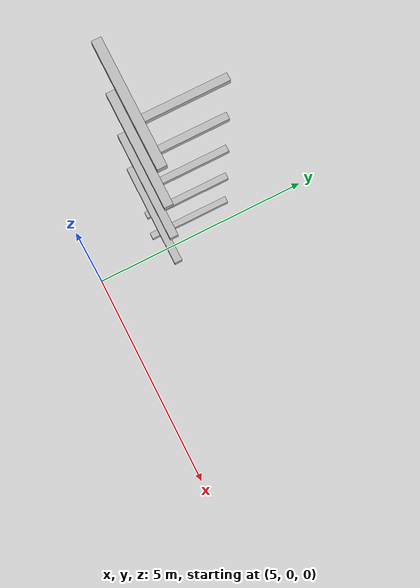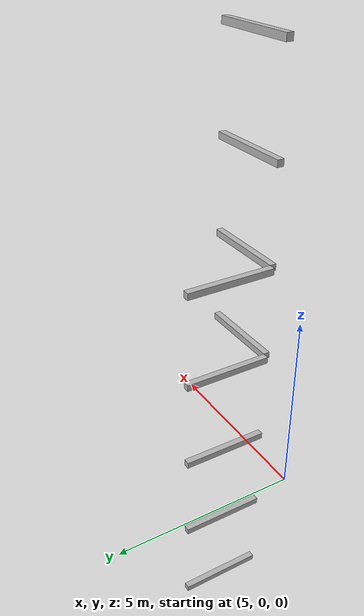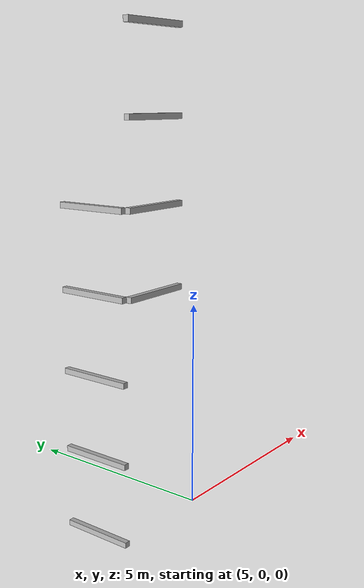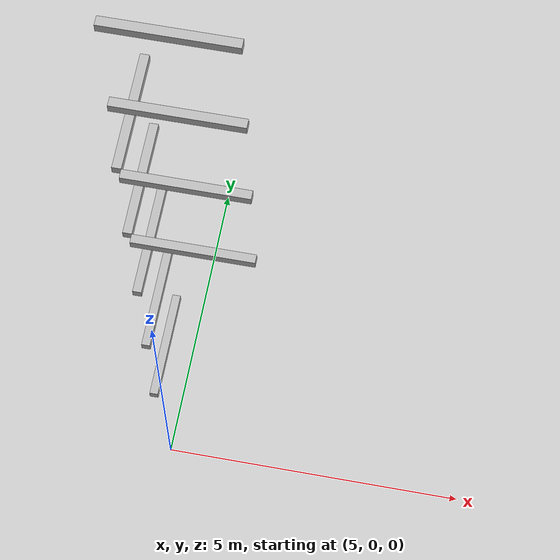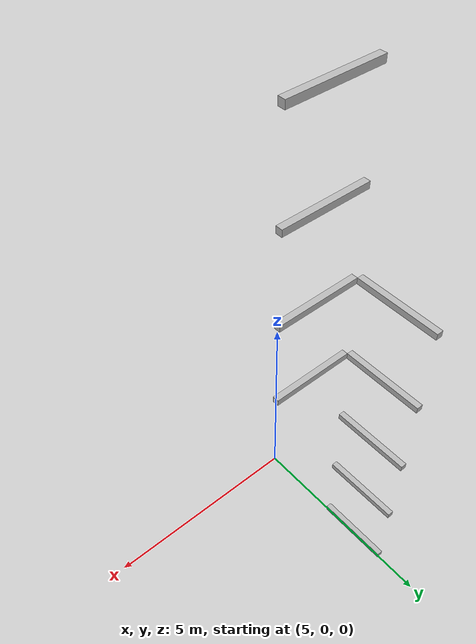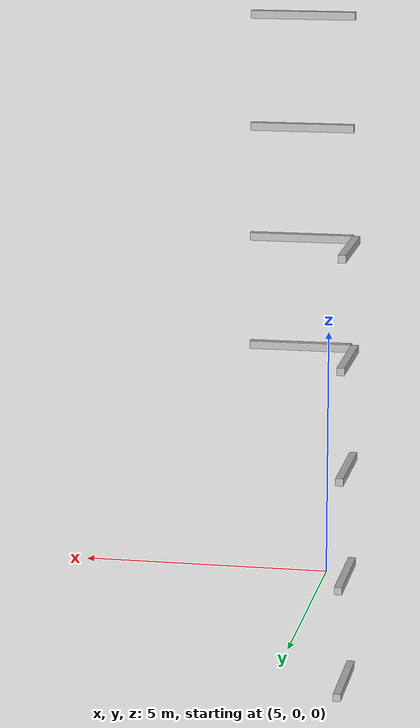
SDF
<sdf version="1.7">
 <world name="default">
  <model name="orthogonal_747_2.000.15_TS">
   <static>1</static>
   <link name="y_link_0_3_5">
    <inertial>
     <mass>1</mass>
     <inertia>
      <ixx>0.166667</ixx>
      <ixy>0</ixy>
      <ixz>0</ixz>
      <iyy>0.166667</iyy>
      <iyz>0</iyz>
      <izz>0.166667</izz>
     </inertia>
    </inertial>
    <pose>10.75 7.525 1.075 0 -0 0</pose>
    <visual name="visual_0">
     <laser_retro>596</laser_retro>
     <geometry><box><size>0.15 1e-06 0.15</size></box></geometry>
     <material>
      <script><name>Gazebo/Grey</name><uri>file://media/materials/scripts/gazebo.material</uri></script>
      <shader type="pixel"><normal_map>__default__</normal_map></shader>
      <ambient>0.678 0.498 0.659 1</ambient>
      <diffuse>0.7 0.7 0.7 1</diffuse>
      <specular>0.01 0.01 0.01 1</specular>
      <emissive>0 0 0 1</emissive>
     </material>
     <pose>0 -1 0 0 -0 0</pose>
     <transparency>1</transparency>
    </visual>
    <visual name="visual_1">
     <laser_retro>597</laser_retro>
     <geometry><box><size>0.15 1e-06 0.15</size></box></geometry>
     <material>
      <script><name>Gazebo/Grey</name><uri>file://media/materials/scripts/gazebo.material</uri></script>
      <shader type="pixel"><normal_map>__default__</normal_map></shader>
      <ambient>0.447 0.624 0.812 1</ambient>
      <diffuse>0.7 0.7 0.7 1</diffuse>
      <specular>0.01 0.01 0.01 1</specular>
      <emissive>0 0 0 1</emissive>
     </material>
     <pose>0 1 0 0 -0 0</pose>
     <transparency>1</transparency>
    </visual>
    <visual name="visual_2">
     <laser_retro>598</laser_retro>
     <geometry><box><size>0.15 2 1e-06</size></box></geometry>
     <material>
      <script><name>Gazebo/Grey</name><uri>file://media/materials/scripts/gazebo.material</uri></script>
      <shader type="pixel"><normal_map>__default__</normal_map></shader>
      <ambient>0.988 0.686 0.243 1</ambient>
      <diffuse>0.7 0.7 0.7 1</diffuse>
      <specular>0.01 0.01 0.01 1</specular>
      <emissive>0 0 0 1</emissive>
     </material>
     <pose>0 0 -0.075 0 -0 0</pose>
     <transparency>1</transparency>
    </visual>
    <visual name="visual_3">
     <laser_retro>599</laser_retro>
     <geometry><box><size>1e-06 2 0.15</size></box></geometry>
     <material>
      <script><name>Gazebo/Grey</name><uri>file://media/materials/scripts/gazebo.material</uri></script>
      <shader type="pixel"><normal_map>__default__</normal_map></shader>
      <ambient>0.988 0.914 0.31 1</ambient>
      <diffuse>0.7 0.7 0.7 1</diffuse>
      <specular>0.01 0.01 0.01 1</specular>
      <emissive>0 0 0 1</emissive>
     </material>
     <pose>0.075 0 0 0 -0 0</pose>
     <transparency>1</transparency>
    </visual>
    <visual name="visual_4">
     <laser_retro>600</laser_retro>
     <geometry><box><size>0.15 2 1e-06</size></box></geometry>
     <material>
      <script><name>Gazebo/Grey</name><uri>file://media/materials/scripts/gazebo.material</uri></script>
      <shader type="pixel"><normal_map>__default__</normal_map></shader>
      <ambient>0.937 0.161 0.161 1</ambient>
      <diffuse>0.7 0.7 0.7 1</diffuse>
      <specular>0.01 0.01 0.01 1</specular>
      <emissive>0 0 0 1</emissive>
     </material>
     <pose>0 0 0.075 0 -0 0</pose>
     <transparency>1</transparency>
    </visual>
    <visual name="visual_5">
     <laser_retro>601</laser_retro>
     <geometry><box><size>1e-06 2 0.15</size></box></geometry>
     <material>
      <script><name>Gazebo/Grey</name><uri>file://media/materials/scripts/gazebo.material</uri></script>
      <shader type="pixel"><normal_map>__default__</normal_map></shader>
      <ambient>0.541 0.886 0.204 1</ambient>
      <diffuse>0.7 0.7 0.7 1</diffuse>
      <specular>0.01 0.01 0.01 1</specular>
      <emissive>0 0 0 1</emissive>
     </material>
     <pose>-0.075 0 0 0 -0 0</pose>
     <transparency>1</transparency>
    </visual>
    <visual name="visual_texture">
     <geometry><box><size>0.149985 1.9998 0.149985</size></box></geometry>
     <material>
      <script>
       <uri>model://BASE_MODELS/simple_block_v2_textured/materials/scripts</uri>
       <uri>model://BASE_MODELS/simple_block_v2_textured/materials/textures</uri>
       <name>metal</name>
      </script>
     </material>
     <laser_retro>602</laser_retro>
    </visual>
    <collision name="collision">
     <geometry><box><size>0.15 2 0.15</size></box></geometry>
     <surface>
      <friction>
       <ode><mu>1</mu><mu2>1</mu2><fdir1>0 0 0</fdir1><slip1>0</slip1><slip2>0</slip2></ode>
       <torsional>
        <coefficient>1</coefficient>
        <patch_radius>0</patch_radius>
        <surface_radius>0</surface_radius>
        <use_patch_radius>1</use_patch_radius>
        <ode><slip>0</slip></ode>
       </torsional>
      </friction>
      <bounce><restitution_coefficient>0</restitution_coefficient><threshold>1e+06</threshold></bounce>
      <contact>
       <collide_without_contact>0</collide_without_contact>
       <collide_without_contact_bitmask>1</collide_without_contact_bitmask>
       <collide_bitmask>1</collide_bitmask>
       <ode>
        <soft_cfm>0</soft_cfm>
        <soft_erp>0.2</soft_erp>
        <kp>1e+13</kp>
        <kd>1</kd>
        <max_vel>0.01</max_vel>
        <min_depth>0</min_depth>
       </ode>
       <bullet>
        <split_impulse>1</split_impulse>
        <split_impulse_penetration_threshold>-0.01</split_impulse_penetration_threshold>
        <soft_cfm>0</soft_cfm>
        <soft_erp>0.2</soft_erp>
        <kp>1e+13</kp>
        <kd>1</kd>
       </bullet>
      </contact>
     </surface>
    </collision>
   </link>
   <link name="y_link_1_3_5">
    <inertial>
     <mass>1</mass>
     <inertia>
      <ixx>0.166667</ixx>
      <ixy>0</ixy>
      <ixz>0</ixz>
      <iyy>0.166667</iyy>
      <iyz>0</iyz>
      <izz>0.166667</izz>
     </inertia>
    </inertial>
    <pose>10.75 7.525 3.225 0 -0 0</pose>
    <visual name="visual_0">
     <laser_retro>1436</laser_retro>
     <geometry><box><size>0.15 1e-06 0.15</size></box></geometry>
     <material>
      <script><name>Gazebo/Grey</name><uri>file://media/materials/scripts/gazebo.material</uri></script>
      <shader type="pixel"><normal_map>__default__</normal_map></shader>
      <ambient>0.678 0.498 0.659 1</ambient>
      <diffuse>0.7 0.7 0.7 1</diffuse>
      <specular>0.01 0.01 0.01 1</specular>
      <emissive>0 0 0 1</emissive>
     </material>
     <pose>0 -1 0 0 -0 0</pose>
     <transparency>1</transparency>
    </visual>
    <visual name="visual_1">
     <laser_retro>1437</laser_retro>
     <geometry><box><size>0.15 1e-06 0.15</size></box></geometry>
     <material>
      <script><name>Gazebo/Grey</name><uri>file://media/materials/scripts/gazebo.material</uri></script>
      <shader type="pixel"><normal_map>__default__</normal_map></shader>
      <ambient>0.447 0.624 0.812 1</ambient>
      <diffuse>0.7 0.7 0.7 1</diffuse>
      <specular>0.01 0.01 0.01 1</specular>
      <emissive>0 0 0 1</emissive>
     </material>
     <pose>0 1 0 0 -0 0</pose>
     <transparency>1</transparency>
    </visual>
    <visual name="visual_2">
     <laser_retro>1438</laser_retro>
     <geometry><box><size>0.15 2 1e-06</size></box></geometry>
     <material>
      <script><name>Gazebo/Grey</name><uri>file://media/materials/scripts/gazebo.material</uri></script>
      <shader type="pixel"><normal_map>__default__</normal_map></shader>
      <ambient>0.988 0.686 0.243 1</ambient>
      <diffuse>0.7 0.7 0.7 1</diffuse>
      <specular>0.01 0.01 0.01 1</specular>
      <emissive>0 0 0 1</emissive>
     </material>
     <pose>0 0 -0.075 0 -0 0</pose>
     <transparency>1</transparency>
    </visual>
    <visual name="visual_3">
     <laser_retro>1439</laser_retro>
     <geometry><box><size>1e-06 2 0.15</size></box></geometry>
     <material>
      <script><name>Gazebo/Grey</name><uri>file://media/materials/scripts/gazebo.material</uri></script>
      <shader type="pixel"><normal_map>__default__</normal_map></shader>
      <ambient>0.988 0.914 0.31 1</ambient>
      <diffuse>0.7 0.7 0.7 1</diffuse>
      <specular>0.01 0.01 0.01 1</specular>
      <emissive>0 0 0 1</emissive>
     </material>
     <pose>0.075 0 0 0 -0 0</pose>
     <transparency>1</transparency>
    </visual>
    <visual name="visual_4">
     <laser_retro>1440</laser_retro>
     <geometry><box><size>0.15 2 1e-06</size></box></geometry>
     <material>
      <script><name>Gazebo/Grey</name><uri>file://media/materials/scripts/gazebo.material</uri></script>
      <shader type="pixel"><normal_map>__default__</normal_map></shader>
      <ambient>0.937 0.161 0.161 1</ambient>
      <diffuse>0.7 0.7 0.7 1</diffuse>
      <specular>0.01 0.01 0.01 1</specular>
      <emissive>0 0 0 1</emissive>
     </material>
     <pose>0 0 0.075 0 -0 0</pose>
     <transparency>1</transparency>
    </visual>
    <visual name="visual_5">
     <laser_retro>1441</laser_retro>
     <geometry><box><size>1e-06 2 0.15</size></box></geometry>
     <material>
      <script><name>Gazebo/Grey</name><uri>file://media/materials/scripts/gazebo.material</uri></script>
      <shader type="pixel"><normal_map>__default__</normal_map></shader>
      <ambient>0.541 0.886 0.204 1</ambient>
      <diffuse>0.7 0.7 0.7 1</diffuse>
      <specular>0.01 0.01 0.01 1</specular>
      <emissive>0 0 0 1</emissive>
     </material>
     <pose>-0.075 0 0 0 -0 0</pose>
     <transparency>1</transparency>
    </visual>
    <visual name="visual_texture">
     <geometry><box><size>0.149985 1.9998 0.149985</size></box></geometry>
     <material>
      <script>
       <uri>model://BASE_MODELS/simple_block_v2_textured/materials/scripts</uri>
       <uri>model://BASE_MODELS/simple_block_v2_textured/materials/textures</uri>
       <name>metal</name>
      </script>
     </material>
     <laser_retro>1442</laser_retro>
    </visual>
    <collision name="collision">
     <geometry><box><size>0.15 2 0.15</size></box></geometry>
     <surface>
      <friction>
       <ode><mu>1</mu><mu2>1</mu2><fdir1>0 0 0</fdir1><slip1>0</slip1><slip2>0</slip2></ode>
       <torsional>
        <coefficient>1</coefficient>
        <patch_radius>0</patch_radius>
        <surface_radius>0</surface_radius>
        <use_patch_radius>1</use_patch_radius>
        <ode><slip>0</slip></ode>
       </torsional>
      </friction>
      <bounce><restitution_coefficient>0</restitution_coefficient><threshold>1e+06</threshold></bounce>
      <contact>
       <collide_without_contact>0</collide_without_contact>
       <collide_without_contact_bitmask>1</collide_without_contact_bitmask>
       <collide_bitmask>1</collide_bitmask>
       <ode>
        <soft_cfm>0</soft_cfm>
        <soft_erp>0.2</soft_erp>
        <kp>1e+13</kp>
        <kd>1</kd>
        <max_vel>0.01</max_vel>
        <min_depth>0</min_depth>
       </ode>
       <bullet>
        <split_impulse>1</split_impulse>
        <split_impulse_penetration_threshold>-0.01</split_impulse_penetration_threshold>
        <soft_cfm>0</soft_cfm>
        <soft_erp>0.2</soft_erp>
        <kp>1e+13</kp>
        <kd>1</kd>
       </bullet>
      </contact>
     </surface>
    </collision>
   </link>
   <link name="y_link_2_3_5">
    <inertial>
     <mass>1</mass>
     <inertia>
      <ixx>0.166667</ixx>
      <ixy>0</ixy>
      <ixz>0</ixz>
      <iyy>0.166667</iyy>
      <iyz>0</iyz>
      <izz>0.166667</izz>
     </inertia>
    </inertial>
    <pose>10.75 7.525 5.375 0 -0 0</pose>
    <visual name="visual_0">
     <laser_retro>2339</laser_retro>
     <geometry><box><size>0.15 1e-06 0.15</size></box></geometry>
     <material>
      <script><name>Gazebo/Grey</name><uri>file://media/materials/scripts/gazebo.material</uri></script>
      <shader type="pixel"><normal_map>__default__</normal_map></shader>
      <ambient>0.678 0.498 0.659 1</ambient>
      <diffuse>0.7 0.7 0.7 1</diffuse>
      <specular>0.01 0.01 0.01 1</specular>
      <emissive>0 0 0 1</emissive>
     </material>
     <pose>0 -1 0 0 -0 0</pose>
     <transparency>1</transparency>
    </visual>
    <visual name="visual_1">
     <laser_retro>2340</laser_retro>
     <geometry><box><size>0.15 1e-06 0.15</size></box></geometry>
     <material>
      <script><name>Gazebo/Grey</name><uri>file://media/materials/scripts/gazebo.material</uri></script>
      <shader type="pixel"><normal_map>__default__</normal_map></shader>
      <ambient>0.447 0.624 0.812 1</ambient>
      <diffuse>0.7 0.7 0.7 1</diffuse>
      <specular>0.01 0.01 0.01 1</specular>
      <emissive>0 0 0 1</emissive>
     </material>
     <pose>0 1 0 0 -0 0</pose>
     <transparency>1</transparency>
    </visual>
    <visual name="visual_2">
     <laser_retro>2341</laser_retro>
     <geometry><box><size>0.15 2 1e-06</size></box></geometry>
     <material>
      <script><name>Gazebo/Grey</name><uri>file://media/materials/scripts/gazebo.material</uri></script>
      <shader type="pixel"><normal_map>__default__</normal_map></shader>
      <ambient>0.988 0.686 0.243 1</ambient>
      <diffuse>0.7 0.7 0.7 1</diffuse>
      <specular>0.01 0.01 0.01 1</specular>
      <emissive>0 0 0 1</emissive>
     </material>
     <pose>0 0 -0.075 0 -0 0</pose>
     <transparency>1</transparency>
    </visual>
    <visual name="visual_3">
     <laser_retro>2342</laser_retro>
     <geometry><box><size>1e-06 2 0.15</size></box></geometry>
     <material>
      <script><name>Gazebo/Grey</name><uri>file://media/materials/scripts/gazebo.material</uri></script>
      <shader type="pixel"><normal_map>__default__</normal_map></shader>
      <ambient>0.988 0.914 0.31 1</ambient>
      <diffuse>0.7 0.7 0.7 1</diffuse>
      <specular>0.01 0.01 0.01 1</specular>
      <emissive>0 0 0 1</emissive>
     </material>
     <pose>0.075 0 0 0 -0 0</pose>
     <transparency>1</transparency>
    </visual>
    <visual name="visual_4">
     <laser_retro>2343</laser_retro>
     <geometry><box><size>0.15 2 1e-06</size></box></geometry>
     <material>
      <script><name>Gazebo/Grey</name><uri>file://media/materials/scripts/gazebo.material</uri></script>
      <shader type="pixel"><normal_map>__default__</normal_map></shader>
      <ambient>0.937 0.161 0.161 1</ambient>
      <diffuse>0.7 0.7 0.7 1</diffuse>
      <specular>0.01 0.01 0.01 1</specular>
      <emissive>0 0 0 1</emissive>
     </material>
     <pose>0 0 0.075 0 -0 0</pose>
     <transparency>1</transparency>
    </visual>
    <visual name="visual_5">
     <laser_retro>2344</laser_retro>
     <geometry><box><size>1e-06 2 0.15</size></box></geometry>
     <material>
      <script><name>Gazebo/Grey</name><uri>file://media/materials/scripts/gazebo.material</uri></script>
      <shader type="pixel"><normal_map>__default__</normal_map></shader>
      <ambient>0.541 0.886 0.204 1</ambient>
      <diffuse>0.7 0.7 0.7 1</diffuse>
      <specular>0.01 0.01 0.01 1</specular>
      <emissive>0 0 0 1</emissive>
     </material>
     <pose>-0.075 0 0 0 -0 0</pose>
     <transparency>1</transparency>
    </visual>
    <visual name="visual_texture">
     <geometry><box><size>0.149985 1.9998 0.149985</size></box></geometry>
     <material>
      <script>
       <uri>model://BASE_MODELS/simple_block_v2_textured/materials/scripts</uri>
       <uri>model://BASE_MODELS/simple_block_v2_textured/materials/textures</uri>
       <name>metal</name>
      </script>
     </material>
     <laser_retro>2345</laser_retro>
    </visual>
    <collision name="collision">
     <geometry><box><size>0.15 2 0.15</size></box></geometry>
     <surface>
      <friction>
       <ode><mu>1</mu><mu2>1</mu2><fdir1>0 0 0</fdir1><slip1>0</slip1><slip2>0</slip2></ode>
       <torsional>
        <coefficient>1</coefficient>
        <patch_radius>0</patch_radius>
        <surface_radius>0</surface_radius>
        <use_patch_radius>1</use_patch_radius>
        <ode><slip>0</slip></ode>
       </torsional>
      </friction>
      <bounce><restitution_coefficient>0</restitution_coefficient><threshold>1e+06</threshold></bounce>
      <contact>
       <collide_without_contact>0</collide_without_contact>
       <collide_without_contact_bitmask>1</collide_without_contact_bitmask>
       <collide_bitmask>1</collide_bitmask>
       <ode>
        <soft_cfm>0</soft_cfm>
        <soft_erp>0.2</soft_erp>
        <kp>1e+13</kp>
        <kd>1</kd>
        <max_vel>0.01</max_vel>
        <min_depth>0</min_depth>
       </ode>
       <bullet>
        <split_impulse>1</split_impulse>
        <split_impulse_penetration_threshold>-0.01</split_impulse_penetration_threshold>
        <soft_cfm>0</soft_cfm>
        <soft_erp>0.2</soft_erp>
        <kp>1e+13</kp>
        <kd>1</kd>
       </bullet>
      </contact>
     </surface>
    </collision>
   </link>
   <link name="x_link_3_3_5">
    <inertial>
     <mass>1</mass>
     <inertia>
      <ixx>0.166667</ixx>
      <ixy>0</ixy>
      <ixz>0</ixz>
      <iyy>0.166667</iyy>
      <iyz>0</iyz>
      <izz>0.166667</izz>
     </inertia>
    </inertial>
    <pose>11.825 6.45 7.525 0 -0 0</pose>
    <visual name="visual_0">
     <laser_retro>3235</laser_retro>
     <geometry><box><size>2 1e-06 0.15</size></box></geometry>
     <material>
      <script><name>Gazebo/Grey</name><uri>file://media/materials/scripts/gazebo.material</uri></script>
      <shader type="pixel"><normal_map>__default__</normal_map></shader>
      <ambient>0.678 0.498 0.659 1</ambient>
      <diffuse>0.7 0.7 0.7 1</diffuse>
      <specular>0.01 0.01 0.01 1</specular>
      <emissive>0 0 0 1</emissive>
     </material>
     <pose>0 -0.075 0 0 -0 0</pose>
     <transparency>1</transparency>
    </visual>
    <visual name="visual_1">
     <laser_retro>3236</laser_retro>
     <geometry><box><size>2 1e-06 0.15</size></box></geometry>
     <material>
      <script><name>Gazebo/Grey</name><uri>file://media/materials/scripts/gazebo.material</uri></script>
      <shader type="pixel"><normal_map>__default__</normal_map></shader>
      <ambient>0.447 0.624 0.812 1</ambient>
      <diffuse>0.7 0.7 0.7 1</diffuse>
      <specular>0.01 0.01 0.01 1</specular>
      <emissive>0 0 0 1</emissive>
     </material>
     <pose>0 0.075 0 0 -0 0</pose>
     <transparency>1</transparency>
    </visual>
    <visual name="visual_2">
     <laser_retro>3237</laser_retro>
     <geometry><box><size>2 0.15 1e-06</size></box></geometry>
     <material>
      <script><name>Gazebo/Grey</name><uri>file://media/materials/scripts/gazebo.material</uri></script>
      <shader type="pixel"><normal_map>__default__</normal_map></shader>
      <ambient>0.988 0.686 0.243 1</ambient>
      <diffuse>0.7 0.7 0.7 1</diffuse>
      <specular>0.01 0.01 0.01 1</specular>
      <emissive>0 0 0 1</emissive>
     </material>
     <pose>0 0 -0.075 0 -0 0</pose>
     <transparency>1</transparency>
    </visual>
    <visual name="visual_3">
     <laser_retro>3238</laser_retro>
     <geometry><box><size>1e-06 0.15 0.15</size></box></geometry>
     <material>
      <script><name>Gazebo/Grey</name><uri>file://media/materials/scripts/gazebo.material</uri></script>
      <shader type="pixel"><normal_map>__default__</normal_map></shader>
      <ambient>0.988 0.914 0.31 1</ambient>
      <diffuse>0.7 0.7 0.7 1</diffuse>
      <specular>0.01 0.01 0.01 1</specular>
      <emissive>0 0 0 1</emissive>
     </material>
     <pose>1 0 0 0 -0 0</pose>
     <transparency>1</transparency>
    </visual>
    <visual name="visual_4">
     <laser_retro>3239</laser_retro>
     <geometry><box><size>2 0.15 1e-06</size></box></geometry>
     <material>
      <script><name>Gazebo/Grey</name><uri>file://media/materials/scripts/gazebo.material</uri></script>
      <shader type="pixel"><normal_map>__default__</normal_map></shader>
      <ambient>0.937 0.161 0.161 1</ambient>
      <diffuse>0.7 0.7 0.7 1</diffuse>
      <specular>0.01 0.01 0.01 1</specular>
      <emissive>0 0 0 1</emissive>
     </material>
     <pose>0 0 0.075 0 -0 0</pose>
     <transparency>1</transparency>
    </visual>
    <visual name="visual_5">
     <laser_retro>3240</laser_retro>
     <geometry><box><size>1e-06 0.15 0.15</size></box></geometry>
     <material>
      <script><name>Gazebo/Grey</name><uri>file://media/materials/scripts/gazebo.material</uri></script>
      <shader type="pixel"><normal_map>__default__</normal_map></shader>
      <ambient>0.541 0.886 0.204 1</ambient>
      <diffuse>0.7 0.7 0.7 1</diffuse>
      <specular>0.01 0.01 0.01 1</specular>
      <emissive>0 0 0 1</emissive>
     </material>
     <pose>-1 0 0 0 -0 0</pose>
     <transparency>1</transparency>
    </visual>
    <visual name="visual_texture">
     <geometry><box><size>1.9998 0.149985 0.149985</size></box></geometry>
     <material>
      <script>
       <uri>model://BASE_MODELS/simple_block_v2_textured/materials/scripts</uri>
       <uri>model://BASE_MODELS/simple_block_v2_textured/materials/textures</uri>
       <name>metal</name>
      </script>
     </material>
     <laser_retro>3241</laser_retro>
    </visual>
    <collision name="collision">
     <geometry><box><size>2 0.15 0.15</size></box></geometry>
     <surface>
      <friction>
       <ode><mu>1</mu><mu2>1</mu2><fdir1>0 0 0</fdir1><slip1>0</slip1><slip2>0</slip2></ode>
       <torsional>
        <coefficient>1</coefficient>
        <patch_radius>0</patch_radius>
        <surface_radius>0</surface_radius>
        <use_patch_radius>1</use_patch_radius>
        <ode><slip>0</slip></ode>
       </torsional>
      </friction>
      <bounce><restitution_coefficient>0</restitution_coefficient><threshold>1e+06</threshold></bounce>
      <contact>
       <collide_without_contact>0</collide_without_contact>
       <collide_without_contact_bitmask>1</collide_without_contact_bitmask>
       <collide_bitmask>1</collide_bitmask>
       <ode>
        <soft_cfm>0</soft_cfm>
        <soft_erp>0.2</soft_erp>
        <kp>1e+13</kp>
        <kd>1</kd>
        <max_vel>0.01</max_vel>
        <min_depth>0</min_depth>
       </ode>
       <bullet>
        <split_impulse>1</split_impulse>
        <split_impulse_penetration_threshold>-0.01</split_impulse_penetration_threshold>
        <soft_cfm>0</soft_cfm>
        <soft_erp>0.2</soft_erp>
        <kp>1e+13</kp>
        <kd>1</kd>
       </bullet>
      </contact>
     </surface>
    </collision>
   </link>
   <link name="y_link_3_3_5">
    <inertial>
     <mass>1</mass>
     <inertia>
      <ixx>0.166667</ixx>
      <ixy>0</ixy>
      <ixz>0</ixz>
      <iyy>0.166667</iyy>
      <iyz>0</iyz>
      <izz>0.166667</izz>
     </inertia>
    </inertial>
    <pose>10.75 7.525 7.525 0 -0 0</pose>
    <visual name="visual_0">
     <laser_retro>3242</laser_retro>
     <geometry><box><size>0.15 1e-06 0.15</size></box></geometry>
     <material>
      <script><name>Gazebo/Grey</name><uri>file://media/materials/scripts/gazebo.material</uri></script>
      <shader type="pixel"><normal_map>__default__</normal_map></shader>
      <ambient>0.678 0.498 0.659 1</ambient>
      <diffuse>0.7 0.7 0.7 1</diffuse>
      <specular>0.01 0.01 0.01 1</specular>
      <emissive>0 0 0 1</emissive>
     </material>
     <pose>0 -1 0 0 -0 0</pose>
     <transparency>1</transparency>
    </visual>
    <visual name="visual_1">
     <laser_retro>3243</laser_retro>
     <geometry><box><size>0.15 1e-06 0.15</size></box></geometry>
     <material>
      <script><name>Gazebo/Grey</name><uri>file://media/materials/scripts/gazebo.material</uri></script>
      <shader type="pixel"><normal_map>__default__</normal_map></shader>
      <ambient>0.447 0.624 0.812 1</ambient>
      <diffuse>0.7 0.7 0.7 1</diffuse>
      <specular>0.01 0.01 0.01 1</specular>
      <emissive>0 0 0 1</emissive>
     </material>
     <pose>0 1 0 0 -0 0</pose>
     <transparency>1</transparency>
    </visual>
    <visual name="visual_2">
     <laser_retro>3244</laser_retro>
     <geometry><box><size>0.15 2 1e-06</size></box></geometry>
     <material>
      <script><name>Gazebo/Grey</name><uri>file://media/materials/scripts/gazebo.material</uri></script>
      <shader type="pixel"><normal_map>__default__</normal_map></shader>
      <ambient>0.988 0.686 0.243 1</ambient>
      <diffuse>0.7 0.7 0.7 1</diffuse>
      <specular>0.01 0.01 0.01 1</specular>
      <emissive>0 0 0 1</emissive>
     </material>
     <pose>0 0 -0.075 0 -0 0</pose>
     <transparency>1</transparency>
    </visual>
    <visual name="visual_3">
     <laser_retro>3245</laser_retro>
     <geometry><box><size>1e-06 2 0.15</size></box></geometry>
     <material>
      <script><name>Gazebo/Grey</name><uri>file://media/materials/scripts/gazebo.material</uri></script>
      <shader type="pixel"><normal_map>__default__</normal_map></shader>
      <ambient>0.988 0.914 0.31 1</ambient>
      <diffuse>0.7 0.7 0.7 1</diffuse>
      <specular>0.01 0.01 0.01 1</specular>
      <emissive>0 0 0 1</emissive>
     </material>
     <pose>0.075 0 0 0 -0 0</pose>
     <transparency>1</transparency>
    </visual>
    <visual name="visual_4">
     <laser_retro>3246</laser_retro>
     <geometry><box><size>0.15 2 1e-06</size></box></geometry>
     <material>
      <script><name>Gazebo/Grey</name><uri>file://media/materials/scripts/gazebo.material</uri></script>
      <shader type="pixel"><normal_map>__default__</normal_map></shader>
      <ambient>0.937 0.161 0.161 1</ambient>
      <diffuse>0.7 0.7 0.7 1</diffuse>
      <specular>0.01 0.01 0.01 1</specular>
      <emissive>0 0 0 1</emissive>
     </material>
     <pose>0 0 0.075 0 -0 0</pose>
     <transparency>1</transparency>
    </visual>
    <visual name="visual_5">
     <laser_retro>3247</laser_retro>
     <geometry><box><size>1e-06 2 0.15</size></box></geometry>
     <material>
      <script><name>Gazebo/Grey</name><uri>file://media/materials/scripts/gazebo.material</uri></script>
      <shader type="pixel"><normal_map>__default__</normal_map></shader>
      <ambient>0.541 0.886 0.204 1</ambient>
      <diffuse>0.7 0.7 0.7 1</diffuse>
      <specular>0.01 0.01 0.01 1</specular>
      <emissive>0 0 0 1</emissive>
     </material>
     <pose>-0.075 0 0 0 -0 0</pose>
     <transparency>1</transparency>
    </visual>
    <visual name="visual_texture">
     <geometry><box><size>0.149985 1.9998 0.149985</size></box></geometry>
     <material>
      <script>
       <uri>model://BASE_MODELS/simple_block_v2_textured/materials/scripts</uri>
       <uri>model://BASE_MODELS/simple_block_v2_textured/materials/textures</uri>
       <name>metal</name>
      </script>
     </material>
     <laser_retro>3248</laser_retro>
    </visual>
    <collision name="collision">
     <geometry><box><size>0.15 2 0.15</size></box></geometry>
     <surface>
      <friction>
       <ode><mu>1</mu><mu2>1</mu2><fdir1>0 0 0</fdir1><slip1>0</slip1><slip2>0</slip2></ode>
       <torsional>
        <coefficient>1</coefficient>
        <patch_radius>0</patch_radius>
        <surface_radius>0</surface_radius>
        <use_patch_radius>1</use_patch_radius>
        <ode><slip>0</slip></ode>
       </torsional>
      </friction>
      <bounce><restitution_coefficient>0</restitution_coefficient><threshold>1e+06</threshold></bounce>
      <contact>
       <collide_without_contact>0</collide_without_contact>
       <collide_without_contact_bitmask>1</collide_without_contact_bitmask>
       <collide_bitmask>1</collide_bitmask>
       <ode>
        <soft_cfm>0</soft_cfm>
        <soft_erp>0.2</soft_erp>
        <kp>1e+13</kp>
        <kd>1</kd>
        <max_vel>0.01</max_vel>
        <min_depth>0</min_depth>
       </ode>
       <bullet>
        <split_impulse>1</split_impulse>
        <split_impulse_penetration_threshold>-0.01</split_impulse_penetration_threshold>
        <soft_cfm>0</soft_cfm>
        <soft_erp>0.2</soft_erp>
        <kp>1e+13</kp>
        <kd>1</kd>
       </bullet>
      </contact>
     </surface>
    </collision>
   </link>
   <link name="x_link_4_3_5">
    <inertial>
     <mass>1</mass>
     <inertia>
      <ixx>0.166667</ixx>
      <ixy>0</ixy>
      <ixz>0</ixz>
      <iyy>0.166667</iyy>
      <iyz>0</iyz>
      <izz>0.166667</izz>
     </inertia>
    </inertial>
    <pose>11.825 6.45 9.675 0 -0 0</pose>
    <visual name="visual_0">
     <laser_retro>4138</laser_retro>
     <geometry><box><size>2 1e-06 0.15</size></box></geometry>
     <material>
      <script><name>Gazebo/Grey</name><uri>file://media/materials/scripts/gazebo.material</uri></script>
      <shader type="pixel"><normal_map>__default__</normal_map></shader>
      <ambient>0.678 0.498 0.659 1</ambient>
      <diffuse>0.7 0.7 0.7 1</diffuse>
      <specular>0.01 0.01 0.01 1</specular>
      <emissive>0 0 0 1</emissive>
     </material>
     <pose>0 -0.075 0 0 -0 0</pose>
     <transparency>1</transparency>
    </visual>
    <visual name="visual_1">
     <laser_retro>4139</laser_retro>
     <geometry><box><size>2 1e-06 0.15</size></box></geometry>
     <material>
      <script><name>Gazebo/Grey</name><uri>file://media/materials/scripts/gazebo.material</uri></script>
      <shader type="pixel"><normal_map>__default__</normal_map></shader>
      <ambient>0.447 0.624 0.812 1</ambient>
      <diffuse>0.7 0.7 0.7 1</diffuse>
      <specular>0.01 0.01 0.01 1</specular>
      <emissive>0 0 0 1</emissive>
     </material>
     <pose>0 0.075 0 0 -0 0</pose>
     <transparency>1</transparency>
    </visual>
    <visual name="visual_2">
     <laser_retro>4140</laser_retro>
     <geometry><box><size>2 0.15 1e-06</size></box></geometry>
     <material>
      <script><name>Gazebo/Grey</name><uri>file://media/materials/scripts/gazebo.material</uri></script>
      <shader type="pixel"><normal_map>__default__</normal_map></shader>
      <ambient>0.988 0.686 0.243 1</ambient>
      <diffuse>0.7 0.7 0.7 1</diffuse>
      <specular>0.01 0.01 0.01 1</specular>
      <emissive>0 0 0 1</emissive>
     </material>
     <pose>0 0 -0.075 0 -0 0</pose>
     <transparency>1</transparency>
    </visual>
    <visual name="visual_3">
     <laser_retro>4141</laser_retro>
     <geometry><box><size>1e-06 0.15 0.15</size></box></geometry>
     <material>
      <script><name>Gazebo/Grey</name><uri>file://media/materials/scripts/gazebo.material</uri></script>
      <shader type="pixel"><normal_map>__default__</normal_map></shader>
      <ambient>0.988 0.914 0.31 1</ambient>
      <diffuse>0.7 0.7 0.7 1</diffuse>
      <specular>0.01 0.01 0.01 1</specular>
      <emissive>0 0 0 1</emissive>
     </material>
     <pose>1 0 0 0 -0 0</pose>
     <transparency>1</transparency>
    </visual>
    <visual name="visual_4">
     <laser_retro>4142</laser_retro>
     <geometry><box><size>2 0.15 1e-06</size></box></geometry>
     <material>
      <script><name>Gazebo/Grey</name><uri>file://media/materials/scripts/gazebo.material</uri></script>
      <shader type="pixel"><normal_map>__default__</normal_map></shader>
      <ambient>0.937 0.161 0.161 1</ambient>
      <diffuse>0.7 0.7 0.7 1</diffuse>
      <specular>0.01 0.01 0.01 1</specular>
      <emissive>0 0 0 1</emissive>
     </material>
     <pose>0 0 0.075 0 -0 0</pose>
     <transparency>1</transparency>
    </visual>
    <visual name="visual_5">
     <laser_retro>4143</laser_retro>
     <geometry><box><size>1e-06 0.15 0.15</size></box></geometry>
     <material>
      <script><name>Gazebo/Grey</name><uri>file://media/materials/scripts/gazebo.material</uri></script>
      <shader type="pixel"><normal_map>__default__</normal_map></shader>
      <ambient>0.541 0.886 0.204 1</ambient>
      <diffuse>0.7 0.7 0.7 1</diffuse>
      <specular>0.01 0.01 0.01 1</specular>
      <emissive>0 0 0 1</emissive>
     </material>
     <pose>-1 0 0 0 -0 0</pose>
     <transparency>1</transparency>
    </visual>
    <visual name="visual_texture">
     <geometry><box><size>1.9998 0.149985 0.149985</size></box></geometry>
     <material>
      <script>
       <uri>model://BASE_MODELS/simple_block_v2_textured/materials/scripts</uri>
       <uri>model://BASE_MODELS/simple_block_v2_textured/materials/textures</uri>
       <name>metal</name>
      </script>
     </material>
     <laser_retro>4144</laser_retro>
    </visual>
    <collision name="collision">
     <geometry><box><size>2 0.15 0.15</size></box></geometry>
     <surface>
      <friction>
       <ode><mu>1</mu><mu2>1</mu2><fdir1>0 0 0</fdir1><slip1>0</slip1><slip2>0</slip2></ode>
       <torsional>
        <coefficient>1</coefficient>
        <patch_radius>0</patch_radius>
        <surface_radius>0</surface_radius>
        <use_patch_radius>1</use_patch_radius>
        <ode><slip>0</slip></ode>
       </torsional>
      </friction>
      <bounce><restitution_coefficient>0</restitution_coefficient><threshold>1e+06</threshold></bounce>
      <contact>
       <collide_without_contact>0</collide_without_contact>
       <collide_without_contact_bitmask>1</collide_without_contact_bitmask>
       <collide_bitmask>1</collide_bitmask>
       <ode>
        <soft_cfm>0</soft_cfm>
        <soft_erp>0.2</soft_erp>
        <kp>1e+13</kp>
        <kd>1</kd>
        <max_vel>0.01</max_vel>
        <min_depth>0</min_depth>
       </ode>
       <bullet>
        <split_impulse>1</split_impulse>
        <split_impulse_penetration_threshold>-0.01</split_impulse_penetration_threshold>
        <soft_cfm>0</soft_cfm>
        <soft_erp>0.2</soft_erp>
        <kp>1e+13</kp>
        <kd>1</kd>
       </bullet>
      </contact>
     </surface>
    </collision>
   </link>
   <link name="y_link_4_3_5">
    <inertial>
     <mass>1</mass>
     <inertia>
      <ixx>0.166667</ixx>
      <ixy>0</ixy>
      <ixz>0</ixz>
      <iyy>0.166667</iyy>
      <iyz>0</iyz>
      <izz>0.166667</izz>
     </inertia>
    </inertial>
    <pose>10.75 7.525 9.675 0 -0 0</pose>
    <visual name="visual_0">
     <laser_retro>4145</laser_retro>
     <geometry><box><size>0.15 1e-06 0.15</size></box></geometry>
     <material>
      <script><name>Gazebo/Grey</name><uri>file://media/materials/scripts/gazebo.material</uri></script>
      <shader type="pixel"><normal_map>__default__</normal_map></shader>
      <ambient>0.678 0.498 0.659 1</ambient>
      <diffuse>0.7 0.7 0.7 1</diffuse>
      <specular>0.01 0.01 0.01 1</specular>
      <emissive>0 0 0 1</emissive>
     </material>
     <pose>0 -1 0 0 -0 0</pose>
     <transparency>1</transparency>
    </visual>
    <visual name="visual_1">
     <laser_retro>4146</laser_retro>
     <geometry><box><size>0.15 1e-06 0.15</size></box></geometry>
     <material>
      <script><name>Gazebo/Grey</name><uri>file://media/materials/scripts/gazebo.material</uri></script>
      <shader type="pixel"><normal_map>__default__</normal_map></shader>
      <ambient>0.447 0.624 0.812 1</ambient>
      <diffuse>0.7 0.7 0.7 1</diffuse>
      <specular>0.01 0.01 0.01 1</specular>
      <emissive>0 0 0 1</emissive>
     </material>
     <pose>0 1 0 0 -0 0</pose>
     <transparency>1</transparency>
    </visual>
    <visual name="visual_2">
     <laser_retro>4147</laser_retro>
     <geometry><box><size>0.15 2 1e-06</size></box></geometry>
     <material>
      <script><name>Gazebo/Grey</name><uri>file://media/materials/scripts/gazebo.material</uri></script>
      <shader type="pixel"><normal_map>__default__</normal_map></shader>
      <ambient>0.988 0.686 0.243 1</ambient>
      <diffuse>0.7 0.7 0.7 1</diffuse>
      <specular>0.01 0.01 0.01 1</specular>
      <emissive>0 0 0 1</emissive>
     </material>
     <pose>0 0 -0.075 0 -0 0</pose>
     <transparency>1</transparency>
    </visual>
    <visual name="visual_3">
     <laser_retro>4148</laser_retro>
     <geometry><box><size>1e-06 2 0.15</size></box></geometry>
     <material>
      <script><name>Gazebo/Grey</name><uri>file://media/materials/scripts/gazebo.material</uri></script>
      <shader type="pixel"><normal_map>__default__</normal_map></shader>
      <ambient>0.988 0.914 0.31 1</ambient>
      <diffuse>0.7 0.7 0.7 1</diffuse>
      <specular>0.01 0.01 0.01 1</specular>
      <emissive>0 0 0 1</emissive>
     </material>
     <pose>0.075 0 0 0 -0 0</pose>
     <transparency>1</transparency>
    </visual>
    <visual name="visual_4">
     <laser_retro>4149</laser_retro>
     <geometry><box><size>0.15 2 1e-06</size></box></geometry>
     <material>
      <script><name>Gazebo/Grey</name><uri>file://media/materials/scripts/gazebo.material</uri></script>
      <shader type="pixel"><normal_map>__default__</normal_map></shader>
      <ambient>0.937 0.161 0.161 1</ambient>
      <diffuse>0.7 0.7 0.7 1</diffuse>
      <specular>0.01 0.01 0.01 1</specular>
      <emissive>0 0 0 1</emissive>
     </material>
     <pose>0 0 0.075 0 -0 0</pose>
     <transparency>1</transparency>
    </visual>
    <visual name="visual_5">
     <laser_retro>4150</laser_retro>
     <geometry><box><size>1e-06 2 0.15</size></box></geometry>
     <material>
      <script><name>Gazebo/Grey</name><uri>file://media/materials/scripts/gazebo.material</uri></script>
      <shader type="pixel"><normal_map>__default__</normal_map></shader>
      <ambient>0.541 0.886 0.204 1</ambient>
      <diffuse>0.7 0.7 0.7 1</diffuse>
      <specular>0.01 0.01 0.01 1</specular>
      <emissive>0 0 0 1</emissive>
     </material>
     <pose>-0.075 0 0 0 -0 0</pose>
     <transparency>1</transparency>
    </visual>
    <visual name="visual_texture">
     <geometry><box><size>0.149985 1.9998 0.149985</size></box></geometry>
     <material>
      <script>
       <uri>model://BASE_MODELS/simple_block_v2_textured/materials/scripts</uri>
       <uri>model://BASE_MODELS/simple_block_v2_textured/materials/textures</uri>
       <name>metal</name>
      </script>
     </material>
     <laser_retro>4151</laser_retro>
    </visual>
    <collision name="collision">
     <geometry><box><size>0.15 2 0.15</size></box></geometry>
     <surface>
      <friction>
       <ode><mu>1</mu><mu2>1</mu2><fdir1>0 0 0</fdir1><slip1>0</slip1><slip2>0</slip2></ode>
       <torsional>
        <coefficient>1</coefficient>
        <patch_radius>0</patch_radius>
        <surface_radius>0</surface_radius>
        <use_patch_radius>1</use_patch_radius>
        <ode><slip>0</slip></ode>
       </torsional>
      </friction>
      <bounce><restitution_coefficient>0</restitution_coefficient><threshold>1e+06</threshold></bounce>
      <contact>
       <collide_without_contact>0</collide_without_contact>
       <collide_without_contact_bitmask>1</collide_without_contact_bitmask>
       <collide_bitmask>1</collide_bitmask>
       <ode>
        <soft_cfm>0</soft_cfm>
        <soft_erp>0.2</soft_erp>
        <kp>1e+13</kp>
        <kd>1</kd>
        <max_vel>0.01</max_vel>
        <min_depth>0</min_depth>
       </ode>
       <bullet>
        <split_impulse>1</split_impulse>
        <split_impulse_penetration_threshold>-0.01</split_impulse_penetration_threshold>
        <soft_cfm>0</soft_cfm>
        <soft_erp>0.2</soft_erp>
        <kp>1e+13</kp>
        <kd>1</kd>
       </bullet>
      </contact>
     </surface>
    </collision>
   </link>
   <link name="x_link_5_3_5">
    <inertial>
     <mass>1</mass>
     <inertia>
      <ixx>0.166667</ixx>
      <ixy>0</ixy>
      <ixz>0</ixz>
      <iyy>0.166667</iyy>
      <iyz>0</iyz>
      <izz>0.166667</izz>
     </inertia>
    </inertial>
    <pose>11.825 6.45 11.825 0 -0 0</pose>
    <visual name="visual_0">
     <laser_retro>5041</laser_retro>
     <geometry><box><size>2 1e-06 0.15</size></box></geometry>
     <material>
      <script><name>Gazebo/Grey</name><uri>file://media/materials/scripts/gazebo.material</uri></script>
      <shader type="pixel"><normal_map>__default__</normal_map></shader>
      <ambient>0.678 0.498 0.659 1</ambient>
      <diffuse>0.7 0.7 0.7 1</diffuse>
      <specular>0.01 0.01 0.01 1</specular>
      <emissive>0 0 0 1</emissive>
     </material>
     <pose>0 -0.075 0 0 -0 0</pose>
     <transparency>1</transparency>
    </visual>
    <visual name="visual_1">
     <laser_retro>5042</laser_retro>
     <geometry><box><size>2 1e-06 0.15</size></box></geometry>
     <material>
      <script><name>Gazebo/Grey</name><uri>file://media/materials/scripts/gazebo.material</uri></script>
      <shader type="pixel"><normal_map>__default__</normal_map></shader>
      <ambient>0.447 0.624 0.812 1</ambient>
      <diffuse>0.7 0.7 0.7 1</diffuse>
      <specular>0.01 0.01 0.01 1</specular>
      <emissive>0 0 0 1</emissive>
     </material>
     <pose>0 0.075 0 0 -0 0</pose>
     <transparency>1</transparency>
    </visual>
    <visual name="visual_2">
     <laser_retro>5043</laser_retro>
     <geometry><box><size>2 0.15 1e-06</size></box></geometry>
     <material>
      <script><name>Gazebo/Grey</name><uri>file://media/materials/scripts/gazebo.material</uri></script>
      <shader type="pixel"><normal_map>__default__</normal_map></shader>
      <ambient>0.988 0.686 0.243 1</ambient>
      <diffuse>0.7 0.7 0.7 1</diffuse>
      <specular>0.01 0.01 0.01 1</specular>
      <emissive>0 0 0 1</emissive>
     </material>
     <pose>0 0 -0.075 0 -0 0</pose>
     <transparency>1</transparency>
    </visual>
    <visual name="visual_3">
     <laser_retro>5044</laser_retro>
     <geometry><box><size>1e-06 0.15 0.15</size></box></geometry>
     <material>
      <script><name>Gazebo/Grey</name><uri>file://media/materials/scripts/gazebo.material</uri></script>
      <shader type="pixel"><normal_map>__default__</normal_map></shader>
      <ambient>0.988 0.914 0.31 1</ambient>
      <diffuse>0.7 0.7 0.7 1</diffuse>
      <specular>0.01 0.01 0.01 1</specular>
      <emissive>0 0 0 1</emissive>
     </material>
     <pose>1 0 0 0 -0 0</pose>
     <transparency>1</transparency>
    </visual>
    <visual name="visual_4">
     <laser_retro>5045</laser_retro>
     <geometry><box><size>2 0.15 1e-06</size></box></geometry>
     <material>
      <script><name>Gazebo/Grey</name><uri>file://media/materials/scripts/gazebo.material</uri></script>
      <shader type="pixel"><normal_map>__default__</normal_map></shader>
      <ambient>0.937 0.161 0.161 1</ambient>
      <diffuse>0.7 0.7 0.7 1</diffuse>
      <specular>0.01 0.01 0.01 1</specular>
      <emissive>0 0 0 1</emissive>
     </material>
     <pose>0 0 0.075 0 -0 0</pose>
     <transparency>1</transparency>
    </visual>
    <visual name="visual_5">
     <laser_retro>5046</laser_retro>
     <geometry><box><size>1e-06 0.15 0.15</size></box></geometry>
     <material>
      <script><name>Gazebo/Grey</name><uri>file://media/materials/scripts/gazebo.material</uri></script>
      <shader type="pixel"><normal_map>__default__</normal_map></shader>
      <ambient>0.541 0.886 0.204 1</ambient>
      <diffuse>0.7 0.7 0.7 1</diffuse>
      <specular>0.01 0.01 0.01 1</specular>
      <emissive>0 0 0 1</emissive>
     </material>
     <pose>-1 0 0 0 -0 0</pose>
     <transparency>1</transparency>
    </visual>
    <visual name="visual_texture">
     <geometry><box><size>1.9998 0.149985 0.149985</size></box></geometry>
     <material>
      <script>
       <uri>model://BASE_MODELS/simple_block_v2_textured/materials/scripts</uri>
       <uri>model://BASE_MODELS/simple_block_v2_textured/materials/textures</uri>
       <name>metal</name>
      </script>
     </material>
     <laser_retro>5047</laser_retro>
    </visual>
    <collision name="collision">
     <geometry><box><size>2 0.15 0.15</size></box></geometry>
     <surface>
      <friction>
       <ode><mu>1</mu><mu2>1</mu2><fdir1>0 0 0</fdir1><slip1>0</slip1><slip2>0</slip2></ode>
       <torsional>
        <coefficient>1</coefficient>
        <patch_radius>0</patch_radius>
        <surface_radius>0</surface_radius>
        <use_patch_radius>1</use_patch_radius>
        <ode><slip>0</slip></ode>
       </torsional>
      </friction>
      <bounce><restitution_coefficient>0</restitution_coefficient><threshold>1e+06</threshold></bounce>
      <contact>
       <collide_without_contact>0</collide_without_contact>
       <collide_without_contact_bitmask>1</collide_without_contact_bitmask>
       <collide_bitmask>1</collide_bitmask>
       <ode>
        <soft_cfm>0</soft_cfm>
        <soft_erp>0.2</soft_erp>
        <kp>1e+13</kp>
        <kd>1</kd>
        <max_vel>0.01</max_vel>
        <min_depth>0</min_depth>
       </ode>
       <bullet>
        <split_impulse>1</split_impulse>
        <split_impulse_penetration_threshold>-0.01</split_impulse_penetration_threshold>
        <soft_cfm>0</soft_cfm>
        <soft_erp>0.2</soft_erp>
        <kp>1e+13</kp>
        <kd>1</kd>
       </bullet>
      </contact>
     </surface>
    </collision>
   </link>
   <link name="x_link_6_3_5">
    <inertial>
     <mass>1</mass>
     <inertia>
      <ixx>0.166667</ixx>
      <ixy>0</ixy>
      <ixz>0</ixz>
      <iyy>0.166667</iyy>
      <iyz>0</iyz>
      <izz>0.166667</izz>
     </inertia>
    </inertial>
    <pose>11.825 6.45 13.975 0 -0 0</pose>
    <visual name="visual_0">
     <laser_retro>6056</laser_retro>
     <geometry><box><size>2 1e-06 0.15</size></box></geometry>
     <material>
      <script><name>Gazebo/Grey</name><uri>file://media/materials/scripts/gazebo.material</uri></script>
      <shader type="pixel"><normal_map>__default__</normal_map></shader>
      <ambient>0.678 0.498 0.659 1</ambient>
      <diffuse>0.7 0.7 0.7 1</diffuse>
      <specular>0.01 0.01 0.01 1</specular>
      <emissive>0 0 0 1</emissive>
     </material>
     <pose>0 -0.075 0 0 -0 0</pose>
     <transparency>1</transparency>
    </visual>
    <visual name="visual_1">
     <laser_retro>6057</laser_retro>
     <geometry><box><size>2 1e-06 0.15</size></box></geometry>
     <material>
      <script><name>Gazebo/Grey</name><uri>file://media/materials/scripts/gazebo.material</uri></script>
      <shader type="pixel"><normal_map>__default__</normal_map></shader>
      <ambient>0.447 0.624 0.812 1</ambient>
      <diffuse>0.7 0.7 0.7 1</diffuse>
      <specular>0.01 0.01 0.01 1</specular>
      <emissive>0 0 0 1</emissive>
     </material>
     <pose>0 0.075 0 0 -0 0</pose>
     <transparency>1</transparency>
    </visual>
    <visual name="visual_2">
     <laser_retro>6058</laser_retro>
     <geometry><box><size>2 0.15 1e-06</size></box></geometry>
     <material>
      <script><name>Gazebo/Grey</name><uri>file://media/materials/scripts/gazebo.material</uri></script>
      <shader type="pixel"><normal_map>__default__</normal_map></shader>
      <ambient>0.988 0.686 0.243 1</ambient>
      <diffuse>0.7 0.7 0.7 1</diffuse>
      <specular>0.01 0.01 0.01 1</specular>
      <emissive>0 0 0 1</emissive>
     </material>
     <pose>0 0 -0.075 0 -0 0</pose>
     <transparency>1</transparency>
    </visual>
    <visual name="visual_3">
     <laser_retro>6059</laser_retro>
     <geometry><box><size>1e-06 0.15 0.15</size></box></geometry>
     <material>
      <script><name>Gazebo/Grey</name><uri>file://media/materials/scripts/gazebo.material</uri></script>
      <shader type="pixel"><normal_map>__default__</normal_map></shader>
      <ambient>0.988 0.914 0.31 1</ambient>
      <diffuse>0.7 0.7 0.7 1</diffuse>
      <specular>0.01 0.01 0.01 1</specular>
      <emissive>0 0 0 1</emissive>
     </material>
     <pose>1 0 0 0 -0 0</pose>
     <transparency>1</transparency>
    </visual>
    <visual name="visual_4">
     <laser_retro>6060</laser_retro>
     <geometry><box><size>2 0.15 1e-06</size></box></geometry>
     <material>
      <script><name>Gazebo/Grey</name><uri>file://media/materials/scripts/gazebo.material</uri></script>
      <shader type="pixel"><normal_map>__default__</normal_map></shader>
      <ambient>0.937 0.161 0.161 1</ambient>
      <diffuse>0.7 0.7 0.7 1</diffuse>
      <specular>0.01 0.01 0.01 1</specular>
      <emissive>0 0 0 1</emissive>
     </material>
     <pose>0 0 0.075 0 -0 0</pose>
     <transparency>1</transparency>
    </visual>
    <visual name="visual_5">
     <laser_retro>6061</laser_retro>
     <geometry><box><size>1e-06 0.15 0.15</size></box></geometry>
     <material>
      <script><name>Gazebo/Grey</name><uri>file://media/materials/scripts/gazebo.material</uri></script>
      <shader type="pixel"><normal_map>__default__</normal_map></shader>
      <ambient>0.541 0.886 0.204 1</ambient>
      <diffuse>0.7 0.7 0.7 1</diffuse>
      <specular>0.01 0.01 0.01 1</specular>
      <emissive>0 0 0 1</emissive>
     </material>
     <pose>-1 0 0 0 -0 0</pose>
     <transparency>1</transparency>
    </visual>
    <visual name="visual_texture">
     <geometry><box><size>1.9998 0.149985 0.149985</size></box></geometry>
     <material>
      <script>
       <uri>model://BASE_MODELS/simple_block_v2_textured/materials/scripts</uri>
       <uri>model://BASE_MODELS/simple_block_v2_textured/materials/textures</uri>
       <name>metal</name>
      </script>
     </material>
     <laser_retro>6062</laser_retro>
    </visual>
    <collision name="collision">
     <geometry><box><size>2 0.15 0.15</size></box></geometry>
     <surface>
      <friction>
       <ode><mu>1</mu><mu2>1</mu2><fdir1>0 0 0</fdir1><slip1>0</slip1><slip2>0</slip2></ode>
       <torsional>
        <coefficient>1</coefficient>
        <patch_radius>0</patch_radius>
        <surface_radius>0</surface_radius>
        <use_patch_radius>1</use_patch_radius>
        <ode><slip>0</slip></ode>
       </torsional>
      </friction>
      <bounce><restitution_coefficient>0</restitution_coefficient><threshold>1e+06</threshold></bounce>
      <contact>
       <collide_without_contact>0</collide_without_contact>
       <collide_without_contact_bitmask>1</collide_without_contact_bitmask>
       <collide_bitmask>1</collide_bitmask>
       <ode>
        <soft_cfm>0</soft_cfm>
        <soft_erp>0.2</soft_erp>
        <kp>1e+13</kp>
        <kd>1</kd>
        <max_vel>0.01</max_vel>
        <min_depth>0</min_depth>
       </ode>
       <bullet>
        <split_impulse>1</split_impulse>
        <split_impulse_penetration_threshold>-0.01</split_impulse_penetration_threshold>
        <soft_cfm>0</soft_cfm>
        <soft_erp>0.2</soft_erp>
        <kp>1e+13</kp>
        <kd>1</kd>
       </bullet>
      </contact>
     </surface>
    </collision>
   </link>
   <pose>-6.47624 -5 -2.5 0 -0 0</pose>
  </model>
 </world>
</sdf>
